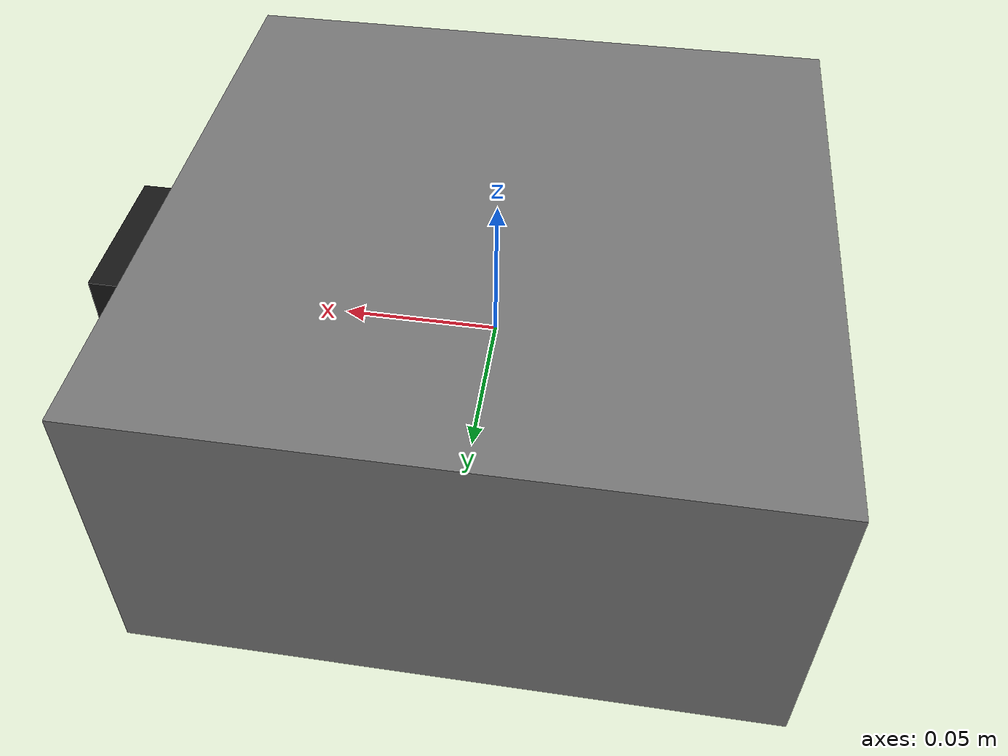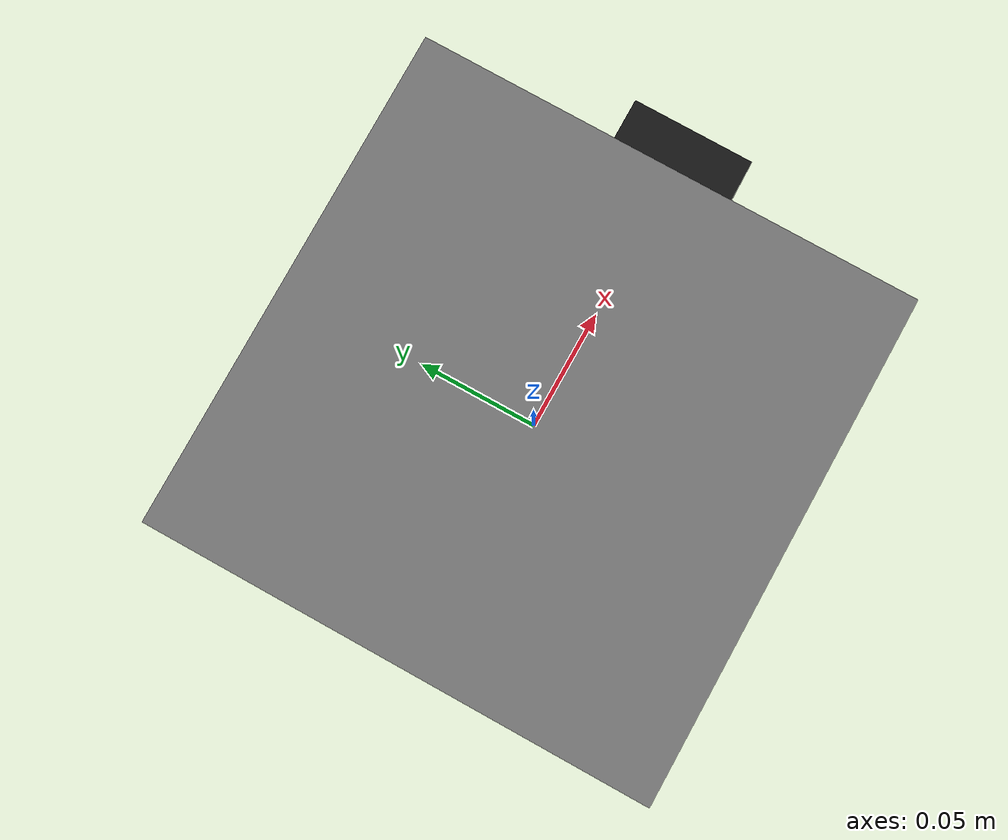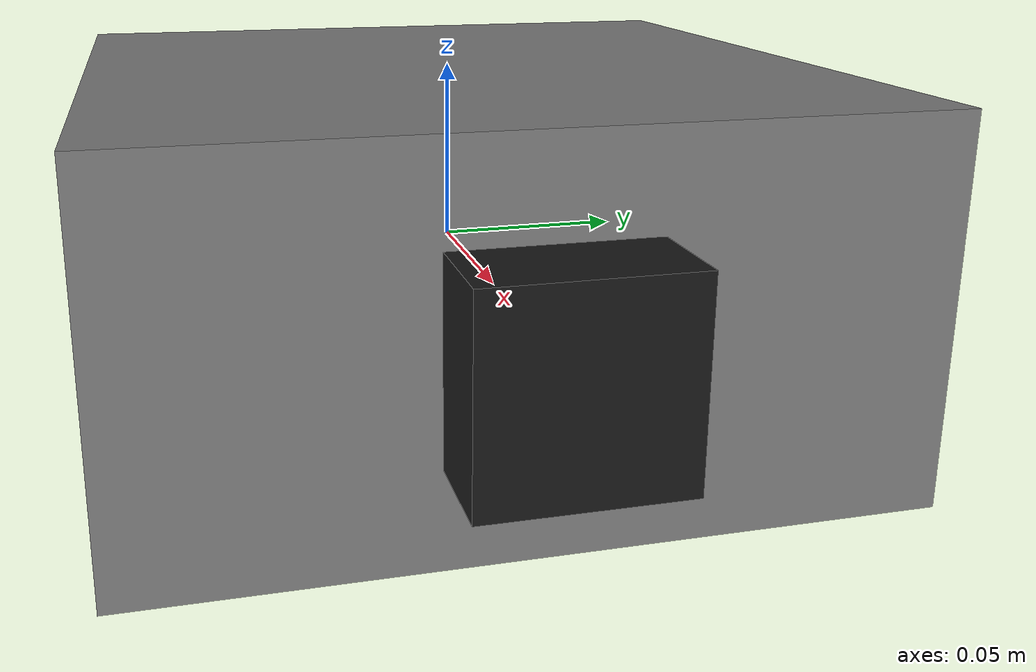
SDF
<?xml version="1.0"?>
<sdf version="1.7">
  <model name="rgbd_camera_robot">
    <static>false</static>

    <!-- Base link (floating platform) -->
    <link name="base_link">
      <pose>0 0 0 0 0 0</pose>
      <gravity>0</gravity>
      <inertial>
        <mass>1.0</mass>
        <inertia>
          <ixx>0.1</ixx>
          <ixy>0</ixy>
          <ixz>0</ixz>
          <iyy>0.1</iyy>
          <iyz>0</iyz>
          <izz>0.1</izz>
        </inertia>
      </inertial>

      <visual name="base_visual">
        <geometry>
          <box>
            <size>0.2 0.2 0.1</size>
          </box>
        </geometry>
        <material>
          <ambient>0.5 0.5 0.5 1</ambient>
          <diffuse>0.5 0.5 0.5 1</diffuse>
        </material>
      </visual>

      <!-- Camera direction indicator (black box in front) -->
      <visual name="camera_indicator">
        <pose>0.1 0 0 0 0 0</pose>
        <geometry>
          <box>
            <size>0.05 0.05 0.05</size>
          </box>
        </geometry>
        <material>
          <ambient>0.1 0.1 0.1 1</ambient>
          <diffuse>0.1 0.1 0.1 1</diffuse>
        </material>
      </visual>

      <collision name="base_collision">
        <geometry>
          <box>
            <size>0.2 0.2 0.1</size>
          </box>
        </geometry>
      </collision>
    </link>

    <!-- Camera link (actual sensor location) -->
    <link name="camera_link">
      <pose relative_to="base_link">0.05 0 0 0 0 0</pose>
      <gravity>0</gravity>
      <inertial>
        <mass>0.1</mass>
        <inertia>
          <ixx>0.001</ixx>
          <ixy>0</ixy>
          <ixz>0</ixz>
          <iyy>0.001</iyy>
          <iyz>0</iyz>
          <izz>0.001</izz>
        </inertia>
      </inertial>

      <!-- RGB Camera Sensor -->
      <sensor name="rgb_camera" type="camera">
        <pose>0 0 0 0 0 0</pose>
        <camera>
          <horizontal_fov>1.047</horizontal_fov>
          <image>
            <width>640</width>
            <height>480</height>
            <format>R8G8B8</format>
          </image>
          <clip>
            <near>0.1</near>
            <far>10</far>
          </clip>
        </camera>
        <always_on>1</always_on>
        <update_rate>30</update_rate>
        <visualize>true</visualize>
        <topic>ibvs/image_raw</topic>
      </sensor>

      <!-- Depth Camera Sensor -->
      <sensor name="depth_camera" type="depth_camera">
        <pose>0 0 0 0 0 0</pose>
        <camera>
          <horizontal_fov>1.047</horizontal_fov>
          <image>
            <width>640</width>
            <height>480</height>
          </image>
          <clip>
            <near>0.1</near>
            <far>10</far>
          </clip>
        </camera>
        <always_on>1</always_on>
        <update_rate>30</update_rate>
        <visualize>true</visualize>
        <topic>ibvs/depth/image_raw</topic>
      </sensor>
    </link>

    <!-- Fixed joint between base and camera -->
    <joint name="camera_joint" type="fixed">
      <parent>base_link</parent>
      <child>camera_link</child>
    </joint>

    <!-- Velocity control plugin for 6DOF movement -->
    <plugin filename="gz-sim-velocity-control-system" name="gz::sim::systems::VelocityControl">
      <link_name>camera_link</link_name>
      <topic>ibvs/cmd_vel</topic>
      <enable_angular_velocity>true</enable_angular_velocity>
      <enable_linear_velocity>true</enable_linear_velocity>
    </plugin>
  </model>
</sdf>
